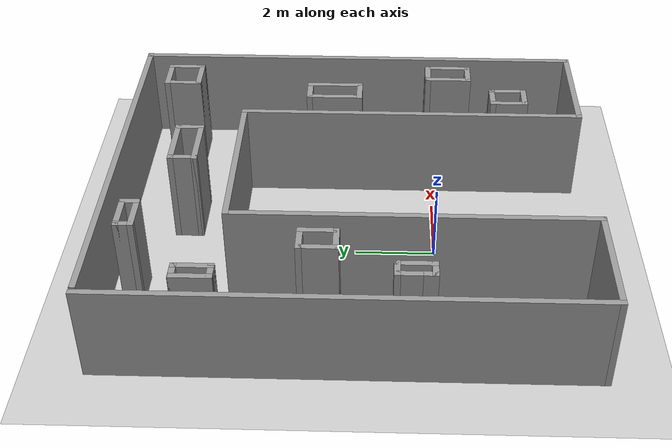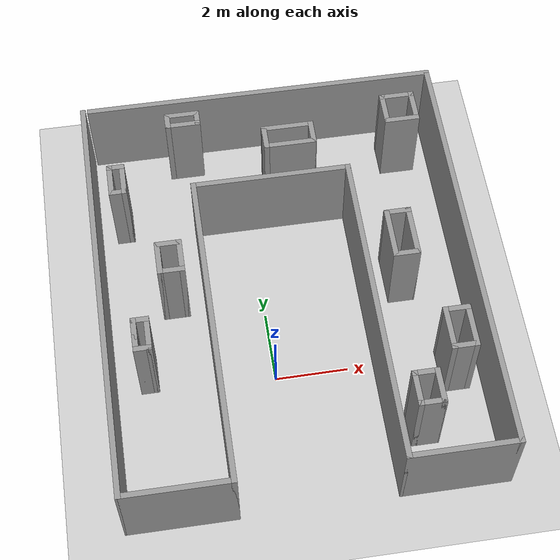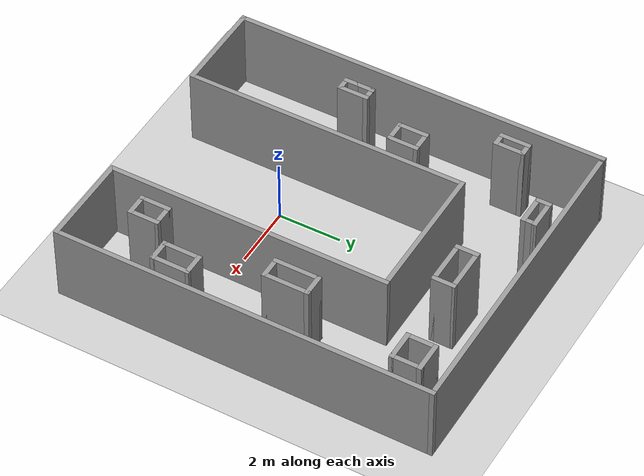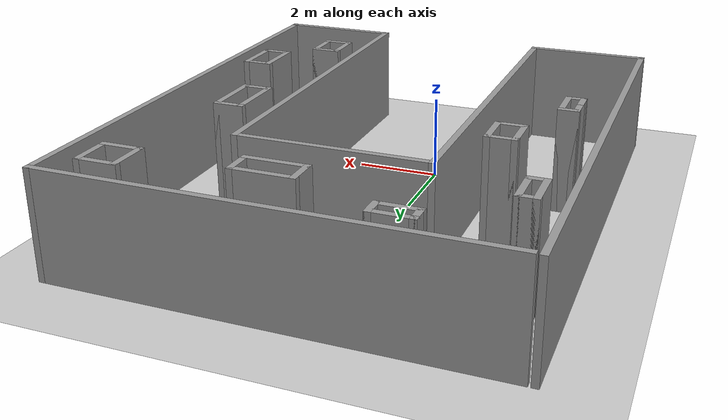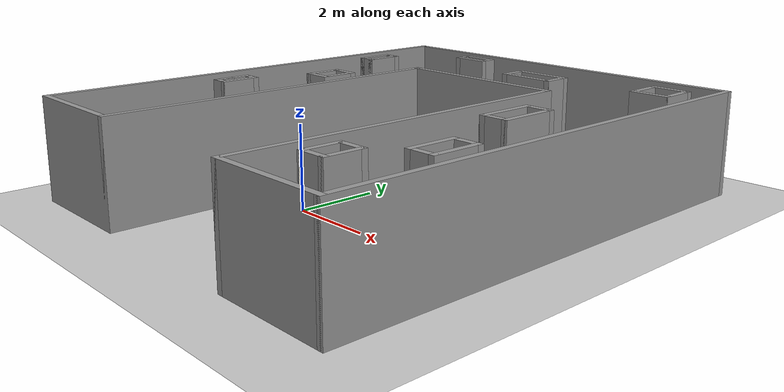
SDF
<sdf version="1.7">
 <world name="default">
  <light name="sun" type="directional">
   <pose>0 0 10 0 -0 0</pose>
   <diffuse>0.8 0.8 0.8 1</diffuse>
   <specular>0.2 0.2 0.2 1</specular>
   <attenuation>
    <range>1000</range>
    <constant>0.9</constant>
    <linear>0.01</linear>
    <quadratic>0.001</quadratic>
   </attenuation>
   <direction>-0.5 0.1 -0.9</direction>
   <spot><inner_angle>0</inner_angle><outer_angle>0</outer_angle><falloff>0</falloff></spot>
  </light>
  <model name="ground_plane">
   <static>1</static>
   <link name="link">
    <collision name="collision">
     <geometry><plane><normal>0 0 1</normal><size>100 100</size></plane></geometry>
     <surface>
      <contact><collide_bitmask>65535</collide_bitmask></contact>
      <friction><ode><mu>100</mu><mu2>50</mu2></ode></friction>
     </surface>
    </collision>
    <visual name="visual">
     <cast_shadows>0</cast_shadows>
     <geometry><plane><normal>0 0 1</normal><size>100 100</size></plane></geometry>
     <material>
      <script><uri>file://media/materials/scripts/gazebo.material</uri><name>Gazebo/Grey</name></script>
     </material>
    </visual>
   </link>
  </model>
  <gravity>0 0 -9.8</gravity>
  <magnetic_field>6e-06 2.3e-05 -4.2e-05</magnetic_field>
  <atmosphere type="adiabatic"/>
  <physics type="ode">
   <max_step_size>0.001</max_step_size>
   <real_time_factor>1</real_time_factor>
   <real_time_update_rate>1000</real_time_update_rate>
  </physics>
  <scene><ambient>0.4 0.4 0.4 1</ambient><background>0.7 0.7 0.7 1</background><shadows>1</shadows></scene>
  <spherical_coordinates>
   <surface_model>EARTH_WGS84</surface_model>
   <latitude_deg>0</latitude_deg>
   <longitude_deg>0</longitude_deg>
   <elevation>0</elevation>
   <heading_deg>0</heading_deg>
  </spherical_coordinates>
  <model name="test_1">
   <pose>0.615 2.115 0 0 -0 0</pose>
   <link name="Wall_0">
    <collision name="Wall_0_Collision">
     <geometry><box><size>12 0.15 2.5</size></box></geometry>
     <pose>0 0 1.25 0 -0 0</pose>
    </collision>
    <visual name="Wall_0_Visual">
     <pose>0 0 1.25 0 -0 0</pose>
     <geometry><box><size>12 0.15 2.5</size></box></geometry>
     <material>
      <script><uri>file://media/materials/scripts/gazebo.material</uri><name>Gazebo/Grey</name></script>
      <ambient>1 1 1 1</ambient>
     </material>
     <meta><layer>0</layer></meta>
    </visual>
    <pose>-5.025 0 0 0 -0 1.5708</pose>
   </link>
   <link name="Wall_10">
    <collision name="Wall_10_Collision">
     <geometry><box><size>0.5 0.15 2.5</size></box></geometry>
     <pose>0 0 1.25 0 -0 0</pose>
    </collision>
    <visual name="Wall_10_Visual">
     <pose>0 0 1.25 0 -0 0</pose>
     <geometry><box><size>0.5 0.15 2.5</size></box></geometry>
     <material>
      <script><uri>file://media/materials/scripts/gazebo.material</uri><name>Gazebo/Grey</name></script>
      <ambient>1 1 1 1</ambient>
     </material>
     <meta><layer>0</layer></meta>
    </visual>
    <pose>-4.22394 -1.78889 0 0 -0 -1.5708</pose>
   </link>
   <link name="Wall_11">
    <collision name="Wall_11_Collision">
     <geometry><box><size>0.5 0.15 2.5</size></box></geometry>
     <pose>0 0 1.25 0 -0 0</pose>
    </collision>
    <visual name="Wall_11_Visual">
     <pose>0 0 1.25 0 -0 0</pose>
     <geometry><box><size>0.5 0.15 2.5</size></box></geometry>
     <material>
      <script><uri>file://media/materials/scripts/gazebo.material</uri><name>Gazebo/Grey</name></script>
      <ambient>1 1 1 1</ambient>
     </material>
     <meta><layer>0</layer></meta>
    </visual>
    <pose>-4.04894 -1.96389 0 0 -0 0</pose>
   </link>
   <link name="Wall_12">
    <collision name="Wall_12_Collision">
     <geometry><box><size>1 0.15 2.5</size></box></geometry>
     <pose>0 0 1.25 0 -0 0</pose>
    </collision>
    <visual name="Wall_12_Visual">
     <pose>0 0 1.25 0 -0 0</pose>
     <geometry><box><size>1 0.15 2.5</size></box></geometry>
     <material>
      <script><uri>file://media/materials/scripts/gazebo.material</uri><name>Gazebo/Grey</name></script>
      <ambient>1 1 1 1</ambient>
     </material>
     <meta><layer>0</layer></meta>
    </visual>
    <pose>-3.87394 -1.53889 0 0 -0 1.5708</pose>
   </link>
   <link name="Wall_13">
    <collision name="Wall_13_Collision">
     <geometry><box><size>0.5 0.15 2.5</size></box></geometry>
     <pose>0 0 1.25 0 -0 0</pose>
    </collision>
    <visual name="Wall_13_Visual">
     <pose>0 0 1.25 0 -0 0</pose>
     <geometry><box><size>0.5 0.15 2.5</size></box></geometry>
     <material>
      <script><uri>file://media/materials/scripts/gazebo.material</uri><name>Gazebo/Grey</name></script>
      <ambient>1 1 1 1</ambient>
     </material>
     <meta><layer>0</layer></meta>
    </visual>
    <pose>-4.04894 -1.11389 0 0 -0 3.14159</pose>
   </link>
   <link name="Wall_14">
    <collision name="Wall_14_Collision">
     <geometry><box><size>0.65 0.15 2.5</size></box></geometry>
     <pose>0 0 1.25 0 -0 0</pose>
    </collision>
    <visual name="Wall_14_Visual">
     <pose>0 0 1.25 0 -0 0</pose>
     <geometry><box><size>0.65 0.15 2.5</size></box></geometry>
     <material>
      <script><uri>file://media/materials/scripts/gazebo.material</uri><name>Gazebo/Grey</name></script>
      <ambient>1 1 1 1</ambient>
     </material>
     <meta><layer>0</layer></meta>
    </visual>
    <pose>-4.22394 -1.36389 0 0 -0 -1.5708</pose>
   </link>
   <link name="Wall_16">
    <collision name="Wall_16_Collision">
     <geometry><box><size>1 0.15 2.5</size></box></geometry>
     <pose>0 0 1.25 0 -0 0</pose>
    </collision>
    <visual name="Wall_16_Visual">
     <pose>0 0 1.25 0 -0 0</pose>
     <geometry><box><size>1 0.15 2.5</size></box></geometry>
     <material>
      <script><uri>file://media/materials/scripts/gazebo.material</uri><name>Gazebo/Grey</name></script>
      <ambient>1 1 1 1</ambient>
     </material>
     <meta><layer>0</layer></meta>
    </visual>
    <pose>-3.37355 0.705141 0 0 -0 -1.5708</pose>
   </link>
   <link name="Wall_17">
    <collision name="Wall_17_Collision">
     <geometry><box><size>0.75 0.15 2.5</size></box></geometry>
     <pose>0 0 1.25 0 -0 0</pose>
    </collision>
    <visual name="Wall_17_Visual">
     <pose>0 0 1.25 0 -0 0</pose>
     <geometry><box><size>0.75 0.15 2.5</size></box></geometry>
     <material>
      <script><uri>file://media/materials/scripts/gazebo.material</uri><name>Gazebo/Grey</name></script>
      <ambient>1 1 1 1</ambient>
     </material>
     <meta><layer>0</layer></meta>
    </visual>
    <pose>-3.07355 0.280141 0 0 -0 0</pose>
   </link>
   <link name="Wall_18">
    <collision name="Wall_18_Collision">
     <geometry><box><size>1 0.15 2.5</size></box></geometry>
     <pose>0 0 1.25 0 -0 0</pose>
    </collision>
    <visual name="Wall_18_Visual">
     <pose>0 0 1.25 0 -0 0</pose>
     <geometry><box><size>1 0.15 2.5</size></box></geometry>
     <material>
      <script><uri>file://media/materials/scripts/gazebo.material</uri><name>Gazebo/Grey</name></script>
      <ambient>1 1 1 1</ambient>
     </material>
     <meta><layer>0</layer></meta>
    </visual>
    <pose>-2.77355 0.705141 0 0 -0 1.5708</pose>
   </link>
   <link name="Wall_19">
    <collision name="Wall_19_Collision">
     <geometry><box><size>0.75 0.15 2.5</size></box></geometry>
     <pose>0 0 1.25 0 -0 0</pose>
    </collision>
    <visual name="Wall_19_Visual">
     <pose>0 0 1.25 0 -0 0</pose>
     <geometry><box><size>0.75 0.15 2.5</size></box></geometry>
     <material>
      <script><uri>file://media/materials/scripts/gazebo.material</uri><name>Gazebo/Grey</name></script>
      <ambient>1 1 1 1</ambient>
     </material>
     <meta><layer>0</layer></meta>
    </visual>
    <pose>-3.07355 1.13014 0 0 -0 3.14159</pose>
   </link>
   <link name="Wall_2">
    <collision name="Wall_2_Collision">
     <geometry><box><size>3 0.15 2.5</size></box></geometry>
     <pose>0 0 1.25 0 -0 0</pose>
    </collision>
    <visual name="Wall_2_Visual">
     <pose>0 0 1.25 0 -0 0</pose>
     <geometry><box><size>3 0.15 2.5</size></box></geometry>
     <material>
      <script><uri>file://media/materials/scripts/gazebo.material</uri><name>Gazebo/Grey</name></script>
      <ambient>1 1 1 1</ambient>
     </material>
     <meta><layer>0</layer></meta>
    </visual>
    <pose>-3.6 -5.925 0 0 -0 0</pose>
   </link>
   <link name="Wall_21">
    <collision name="Wall_21_Collision">
     <geometry><box><size>1 0.15 2.5</size></box></geometry>
     <pose>0 0 1.25 0 -0 0</pose>
    </collision>
    <visual name="Wall_21_Visual">
     <pose>0 0 1.25 0 -0 0</pose>
     <geometry><box><size>1 0.15 2.5</size></box></geometry>
     <material>
      <script><uri>file://media/materials/scripts/gazebo.material</uri><name>Gazebo/Grey</name></script>
      <ambient>1 1 1 1</ambient>
     </material>
     <meta><layer>0</layer></meta>
    </visual>
    <pose>-4.44311 3.43164 0 0 -0 -1.5708</pose>
   </link>
   <link name="Wall_22">
    <collision name="Wall_22_Collision">
     <geometry><box><size>0.5 0.15 2.5</size></box></geometry>
     <pose>0 0 1.25 0 -0 0</pose>
    </collision>
    <visual name="Wall_22_Visual">
     <pose>0 0 1.25 0 -0 0</pose>
     <geometry><box><size>0.5 0.15 2.5</size></box></geometry>
     <material>
      <script><uri>file://media/materials/scripts/gazebo.material</uri><name>Gazebo/Grey</name></script>
      <ambient>1 1 1 1</ambient>
     </material>
     <meta><layer>0</layer></meta>
    </visual>
    <pose>-4.26811 3.00664 0 0 -0 0</pose>
   </link>
   <link name="Wall_23">
    <collision name="Wall_23_Collision">
     <geometry><box><size>1 0.15 2.5</size></box></geometry>
     <pose>0 0 1.25 0 -0 0</pose>
    </collision>
    <visual name="Wall_23_Visual">
     <pose>0 0 1.25 0 -0 0</pose>
     <geometry><box><size>1 0.15 2.5</size></box></geometry>
     <material>
      <script><uri>file://media/materials/scripts/gazebo.material</uri><name>Gazebo/Grey</name></script>
      <ambient>1 1 1 1</ambient>
     </material>
     <meta><layer>0</layer></meta>
    </visual>
    <pose>-4.09311 3.43164 0 0 -0 1.5708</pose>
   </link>
   <link name="Wall_24">
    <collision name="Wall_24_Collision">
     <geometry><box><size>0.5 0.15 2.5</size></box></geometry>
     <pose>0 0 1.25 0 -0 0</pose>
    </collision>
    <visual name="Wall_24_Visual">
     <pose>0 0 1.25 0 -0 0</pose>
     <geometry><box><size>0.5 0.15 2.5</size></box></geometry>
     <material>
      <script><uri>file://media/materials/scripts/gazebo.material</uri><name>Gazebo/Grey</name></script>
      <ambient>1 1 1 1</ambient>
     </material>
     <meta><layer>0</layer></meta>
    </visual>
    <pose>-4.26811 3.85664 0 0 -0 3.14159</pose>
   </link>
   <link name="Wall_26">
    <collision name="Wall_26_Collision">
     <geometry><box><size>1 0.15 2.5</size></box></geometry>
     <pose>0 0 1.25 0 -0 0</pose>
    </collision>
    <visual name="Wall_26_Visual">
     <pose>0 0 1.25 0 -0 0</pose>
     <geometry><box><size>1 0.15 2.5</size></box></geometry>
     <material>
      <script><uri>file://media/materials/scripts/gazebo.material</uri><name>Gazebo/Grey</name></script>
      <ambient>1 1 1 1</ambient>
     </material>
     <meta><layer>0</layer></meta>
    </visual>
    <pose>-2.23843 5.42591 0 0 -0 0</pose>
   </link>
   <link name="Wall_27">
    <collision name="Wall_27_Collision">
     <geometry><box><size>0.5 0.15 2.5</size></box></geometry>
     <pose>0 0 1.25 0 -0 0</pose>
    </collision>
    <visual name="Wall_27_Visual">
     <pose>0 0 1.25 0 -0 0</pose>
     <geometry><box><size>0.5 0.15 2.5</size></box></geometry>
     <material>
      <script><uri>file://media/materials/scripts/gazebo.material</uri><name>Gazebo/Grey</name></script>
      <ambient>1 1 1 1</ambient>
     </material>
     <meta><layer>0</layer></meta>
    </visual>
    <pose>-1.81343 5.25091 0 0 -0 -1.5708</pose>
   </link>
   <link name="Wall_28">
    <collision name="Wall_28_Collision">
     <geometry><box><size>1 0.15 2.5</size></box></geometry>
     <pose>0 0 1.25 0 -0 0</pose>
    </collision>
    <visual name="Wall_28_Visual">
     <pose>0 0 1.25 0 -0 0</pose>
     <geometry><box><size>1 0.15 2.5</size></box></geometry>
     <material>
      <script><uri>file://media/materials/scripts/gazebo.material</uri><name>Gazebo/Grey</name></script>
      <ambient>1 1 1 1</ambient>
     </material>
     <meta><layer>0</layer></meta>
    </visual>
    <pose>-2.23843 5.07591 0 0 -0 3.14159</pose>
   </link>
   <link name="Wall_29">
    <collision name="Wall_29_Collision">
     <geometry><box><size>0.5 0.15 2.5</size></box></geometry>
     <pose>0 0 1.25 0 -0 0</pose>
    </collision>
    <visual name="Wall_29_Visual">
     <pose>0 0 1.25 0 -0 0</pose>
     <geometry><box><size>0.5 0.15 2.5</size></box></geometry>
     <material>
      <script><uri>file://media/materials/scripts/gazebo.material</uri><name>Gazebo/Grey</name></script>
      <ambient>1 1 1 1</ambient>
     </material>
     <meta><layer>0</layer></meta>
    </visual>
    <pose>-2.66343 5.25091 0 0 -0 1.5708</pose>
   </link>
   <link name="Wall_3">
    <collision name="Wall_3_Collision">
     <geometry><box><size>9 0.15 2.5</size></box></geometry>
     <pose>0 0 1.25 0 -0 0</pose>
    </collision>
    <visual name="Wall_3_Visual">
     <pose>0 0 1.25 0 -0 0</pose>
     <geometry><box><size>9 0.15 2.5</size></box></geometry>
     <material>
      <script><uri>file://media/materials/scripts/gazebo.material</uri><name>Gazebo/Grey</name></script>
      <ambient>1 1 1 1</ambient>
     </material>
     <meta><layer>0</layer></meta>
    </visual>
    <pose>-2.175 -1.5 0 0 -0 1.5708</pose>
   </link>
   <link name="Wall_31">
    <collision name="Wall_31_Collision">
     <geometry><box><size>0.75 0.15 2.5</size></box></geometry>
     <pose>0 0 1.25 0 -0 0</pose>
    </collision>
    <visual name="Wall_31_Visual">
     <pose>0 0 1.25 0 -0 0</pose>
     <geometry><box><size>0.75 0.15 2.5</size></box></geometry>
     <material>
      <script><uri>file://media/materials/scripts/gazebo.material</uri><name>Gazebo/Grey</name></script>
      <ambient>1 1 1 1</ambient>
     </material>
     <meta><layer>0</layer></meta>
    </visual>
    <pose>0.028 4.27553 0 0 -0 -1.5708</pose>
   </link>
   <link name="Wall_32">
    <collision name="Wall_32_Collision">
     <geometry><box><size>1.5 0.15 2.5</size></box></geometry>
     <pose>0 0 1.25 0 -0 0</pose>
    </collision>
    <visual name="Wall_32_Visual">
     <pose>0 0 1.25 0 -0 0</pose>
     <geometry><box><size>1.5 0.15 2.5</size></box></geometry>
     <material>
      <script><uri>file://media/materials/scripts/gazebo.material</uri><name>Gazebo/Grey</name></script>
      <ambient>1 1 1 1</ambient>
     </material>
     <meta><layer>0</layer></meta>
    </visual>
    <pose>0.703 3.97553 0 0 -0 0</pose>
   </link>
   <link name="Wall_33">
    <collision name="Wall_33_Collision">
     <geometry><box><size>0.75 0.15 2.5</size></box></geometry>
     <pose>0 0 1.25 0 -0 0</pose>
    </collision>
    <visual name="Wall_33_Visual">
     <pose>0 0 1.25 0 -0 0</pose>
     <geometry><box><size>0.75 0.15 2.5</size></box></geometry>
     <material>
      <script><uri>file://media/materials/scripts/gazebo.material</uri><name>Gazebo/Grey</name></script>
      <ambient>1 1 1 1</ambient>
     </material>
     <meta><layer>0</layer></meta>
    </visual>
    <pose>1.378 4.27553 0 0 -0 1.5708</pose>
   </link>
   <link name="Wall_34">
    <collision name="Wall_34_Collision">
     <geometry><box><size>1.5 0.15 2.5</size></box></geometry>
     <pose>0 0 1.25 0 -0 0</pose>
    </collision>
    <visual name="Wall_34_Visual">
     <pose>0 0 1.25 0 -0 0</pose>
     <geometry><box><size>1.5 0.15 2.5</size></box></geometry>
     <material>
      <script><uri>file://media/materials/scripts/gazebo.material</uri><name>Gazebo/Grey</name></script>
      <ambient>1 1 1 1</ambient>
     </material>
     <meta><layer>0</layer></meta>
    </visual>
    <pose>0.703 4.57553 0 0 -0 3.14159</pose>
   </link>
   <link name="Wall_4">
    <collision name="Wall_4_Collision">
     <geometry><box><size>4.5 0.15 2.5</size></box></geometry>
     <pose>0 0 1.25 0 -0 0</pose>
    </collision>
    <visual name="Wall_4_Visual">
     <pose>0 0 1.25 0 -0 0</pose>
     <geometry><box><size>4.5 0.15 2.5</size></box></geometry>
     <material>
      <script><uri>file://media/materials/scripts/gazebo.material</uri><name>Gazebo/Grey</name></script>
      <ambient>1 1 1 1</ambient>
     </material>
     <meta><layer>0</layer></meta>
    </visual>
    <pose>0 2.925 0 0 -0 0</pose>
   </link>
   <link name="Wall_41">
    <collision name="Wall_41_Collision">
     <geometry><box><size>1 0.15 2.5</size></box></geometry>
     <pose>0 0 1.25 0 -0 0</pose>
    </collision>
    <visual name="Wall_41_Visual">
     <pose>0 0 1.25 0 -0 0</pose>
     <geometry><box><size>1 0.15 2.5</size></box></geometry>
     <material>
      <script><uri>file://media/materials/scripts/gazebo.material</uri><name>Gazebo/Grey</name></script>
      <ambient>1 1 1 1</ambient>
     </material>
     <meta><layer>0</layer></meta>
    </visual>
    <pose>3.56982 4.78174 0 0 -0 -1.5708</pose>
   </link>
   <link name="Wall_42">
    <collision name="Wall_42_Collision">
     <geometry><box><size>1 0.15 2.5</size></box></geometry>
     <pose>0 0 1.25 0 -0 0</pose>
    </collision>
    <visual name="Wall_42_Visual">
     <pose>0 0 1.25 0 -0 0</pose>
     <geometry><box><size>1 0.15 2.5</size></box></geometry>
     <material>
      <script><uri>file://media/materials/scripts/gazebo.material</uri><name>Gazebo/Grey</name></script>
      <ambient>1 1 1 1</ambient>
     </material>
     <meta><layer>0</layer></meta>
    </visual>
    <pose>3.99482 4.35674 0 0 -0 0</pose>
   </link>
   <link name="Wall_43">
    <collision name="Wall_43_Collision">
     <geometry><box><size>1 0.15 2.5</size></box></geometry>
     <pose>0 0 1.25 0 -0 0</pose>
    </collision>
    <visual name="Wall_43_Visual">
     <pose>0 0 1.25 0 -0 0</pose>
     <geometry><box><size>1 0.15 2.5</size></box></geometry>
     <material>
      <script><uri>file://media/materials/scripts/gazebo.material</uri><name>Gazebo/Grey</name></script>
      <ambient>1 1 1 1</ambient>
     </material>
     <meta><layer>0</layer></meta>
    </visual>
    <pose>4.41982 4.78174 0 0 -0 1.5708</pose>
   </link>
   <link name="Wall_44">
    <collision name="Wall_44_Collision">
     <geometry><box><size>1 0.15 2.5</size></box></geometry>
     <pose>0 0 1.25 0 -0 0</pose>
    </collision>
    <visual name="Wall_44_Visual">
     <pose>0 0 1.25 0 -0 0</pose>
     <geometry><box><size>1 0.15 2.5</size></box></geometry>
     <material>
      <script><uri>file://media/materials/scripts/gazebo.material</uri><name>Gazebo/Grey</name></script>
      <ambient>1 1 1 1</ambient>
     </material>
     <meta><layer>0</layer></meta>
    </visual>
    <pose>3.99482 5.20674 0 0 -0 3.14159</pose>
   </link>
   <link name="Wall_46">
    <collision name="Wall_46_Collision">
     <geometry><box><size>1.5 0.15 2.5</size></box></geometry>
     <pose>0 0 1.25 0 -0 0</pose>
    </collision>
    <visual name="Wall_46_Visual">
     <pose>0 0 1.25 0 -0 0</pose>
     <geometry><box><size>1.5 0.15 2.5</size></box></geometry>
     <material>
      <script><uri>file://media/materials/scripts/gazebo.material</uri><name>Gazebo/Grey</name></script>
      <ambient>1 1 1 1</ambient>
     </material>
     <meta><layer>0</layer></meta>
    </visual>
    <pose>2.96491 0.56911 0 0 -0 -1.5708</pose>
   </link>
   <link name="Wall_47">
    <collision name="Wall_47_Collision">
     <geometry><box><size>0.75 0.15 2.5</size></box></geometry>
     <pose>0 0 1.25 0 -0 0</pose>
    </collision>
    <visual name="Wall_47_Visual">
     <pose>0 0 1.25 0 -0 0</pose>
     <geometry><box><size>0.75 0.15 2.5</size></box></geometry>
     <material>
      <script><uri>file://media/materials/scripts/gazebo.material</uri><name>Gazebo/Grey</name></script>
      <ambient>1 1 1 1</ambient>
     </material>
     <meta><layer>0</layer></meta>
    </visual>
    <pose>3.26491 -0.10589 0 0 -0 0</pose>
   </link>
   <link name="Wall_48">
    <collision name="Wall_48_Collision">
     <geometry><box><size>1.5 0.15 2.5</size></box></geometry>
     <pose>0 0 1.25 0 -0 0</pose>
    </collision>
    <visual name="Wall_48_Visual">
     <pose>0 0 1.25 0 -0 0</pose>
     <geometry><box><size>1.5 0.15 2.5</size></box></geometry>
     <material>
      <script><uri>file://media/materials/scripts/gazebo.material</uri><name>Gazebo/Grey</name></script>
      <ambient>1 1 1 1</ambient>
     </material>
     <meta><layer>0</layer></meta>
    </visual>
    <pose>3.56491 0.56911 0 0 -0 1.5708</pose>
   </link>
   <link name="Wall_49">
    <collision name="Wall_49_Collision">
     <geometry><box><size>0.75 0.15 2.5</size></box></geometry>
     <pose>0 0 1.25 0 -0 0</pose>
    </collision>
    <visual name="Wall_49_Visual">
     <pose>0 0 1.25 0 -0 0</pose>
     <geometry><box><size>0.75 0.15 2.5</size></box></geometry>
     <material>
      <script><uri>file://media/materials/scripts/gazebo.material</uri><name>Gazebo/Grey</name></script>
      <ambient>1 1 1 1</ambient>
     </material>
     <meta><layer>0</layer></meta>
    </visual>
    <pose>3.26491 1.24411 0 0 -0 3.14159</pose>
   </link>
   <link name="Wall_5">
    <collision name="Wall_5_Collision">
     <geometry><box><size>9 0.15 2.5</size></box></geometry>
     <pose>0 0 1.25 0 -0 0</pose>
    </collision>
    <visual name="Wall_5_Visual">
     <pose>0 0 1.25 0 -0 0</pose>
     <geometry><box><size>9 0.15 2.5</size></box></geometry>
     <material>
      <script><uri>file://media/materials/scripts/gazebo.material</uri><name>Gazebo/Grey</name></script>
      <ambient>1 1 1 1</ambient>
     </material>
     <meta><layer>0</layer></meta>
    </visual>
    <pose>2.175 -1.5 0 0 -0 -1.5708</pose>
   </link>
   <link name="Wall_51">
    <collision name="Wall_51_Collision">
     <geometry><box><size>1.25 0.15 2.5</size></box></geometry>
     <pose>0 0 1.25 0 -0 0</pose>
    </collision>
    <visual name="Wall_51_Visual">
     <pose>0 0 1.25 0 -0 0</pose>
     <geometry><box><size>1.25 0.15 2.5</size></box></geometry>
     <material>
      <script><uri>file://media/materials/scripts/gazebo.material</uri><name>Gazebo/Grey</name></script>
      <ambient>1 1 1 1</ambient>
     </material>
     <meta><layer>0</layer></meta>
    </visual>
    <pose>3.92535 -2.54269 0 0 -0 -1.5708</pose>
   </link>
   <link name="Wall_52">
    <collision name="Wall_52_Collision">
     <geometry><box><size>0.75 0.15 2.5</size></box></geometry>
     <pose>0 0 1.25 0 -0 0</pose>
    </collision>
    <visual name="Wall_52_Visual">
     <pose>0 0 1.25 0 -0 0</pose>
     <geometry><box><size>0.75 0.15 2.5</size></box></geometry>
     <material>
      <script><uri>file://media/materials/scripts/gazebo.material</uri><name>Gazebo/Grey</name></script>
      <ambient>1 1 1 1</ambient>
     </material>
     <meta><layer>0</layer></meta>
    </visual>
    <pose>4.22535 -3.09268 0 0 -0 0</pose>
   </link>
   <link name="Wall_53">
    <collision name="Wall_53_Collision">
     <geometry><box><size>1.25 0.15 2.5</size></box></geometry>
     <pose>0 0 1.25 0 -0 0</pose>
    </collision>
    <visual name="Wall_53_Visual">
     <pose>0 0 1.25 0 -0 0</pose>
     <geometry><box><size>1.25 0.15 2.5</size></box></geometry>
     <material>
      <script><uri>file://media/materials/scripts/gazebo.material</uri><name>Gazebo/Grey</name></script>
      <ambient>1 1 1 1</ambient>
     </material>
     <meta><layer>0</layer></meta>
    </visual>
    <pose>4.52535 -2.54269 0 0 -0 1.5708</pose>
   </link>
   <link name="Wall_54">
    <collision name="Wall_54_Collision">
     <geometry><box><size>0.75 0.15 2.5</size></box></geometry>
     <pose>0 0 1.25 0 -0 0</pose>
    </collision>
    <visual name="Wall_54_Visual">
     <pose>0 0 1.25 0 -0 0</pose>
     <geometry><box><size>0.75 0.15 2.5</size></box></geometry>
     <material>
      <script><uri>file://media/materials/scripts/gazebo.material</uri><name>Gazebo/Grey</name></script>
      <ambient>1 1 1 1</ambient>
     </material>
     <meta><layer>0</layer></meta>
    </visual>
    <pose>4.22535 -1.99269 0 0 -0 3.14159</pose>
   </link>
   <link name="Wall_56">
    <collision name="Wall_56_Collision">
     <geometry><box><size>1 0.15 2.5</size></box></geometry>
     <pose>0 0 1.25 0 -0 0</pose>
    </collision>
    <visual name="Wall_56_Visual">
     <pose>0 0 1.25 0 -0 0</pose>
     <geometry><box><size>1 0.15 2.5</size></box></geometry>
     <material>
      <script><uri>file://media/materials/scripts/gazebo.material</uri><name>Gazebo/Grey</name></script>
      <ambient>1 1 1 1</ambient>
     </material>
     <meta><layer>0</layer></meta>
    </visual>
    <pose>2.75433 -4.13363 0 0 -0 -1.5708</pose>
   </link>
   <link name="Wall_57">
    <collision name="Wall_57_Collision">
     <geometry><box><size>0.75 0.15 2.5</size></box></geometry>
     <pose>0 0 1.25 0 -0 0</pose>
    </collision>
    <visual name="Wall_57_Visual">
     <pose>0 0 1.25 0 -0 0</pose>
     <geometry><box><size>0.75 0.15 2.5</size></box></geometry>
     <material>
      <script><uri>file://media/materials/scripts/gazebo.material</uri><name>Gazebo/Grey</name></script>
      <ambient>1 1 1 1</ambient>
     </material>
     <meta><layer>0</layer></meta>
    </visual>
    <pose>3.05433 -4.55863 0 0 -0 0</pose>
   </link>
   <link name="Wall_58">
    <collision name="Wall_58_Collision">
     <geometry><box><size>1 0.15 2.5</size></box></geometry>
     <pose>0 0 1.25 0 -0 0</pose>
    </collision>
    <visual name="Wall_58_Visual">
     <pose>0 0 1.25 0 -0 0</pose>
     <geometry><box><size>1 0.15 2.5</size></box></geometry>
     <material>
      <script><uri>file://media/materials/scripts/gazebo.material</uri><name>Gazebo/Grey</name></script>
      <ambient>1 1 1 1</ambient>
     </material>
     <meta><layer>0</layer></meta>
    </visual>
    <pose>3.35433 -4.13363 0 0 -0 1.5708</pose>
   </link>
   <link name="Wall_59">
    <collision name="Wall_59_Collision">
     <geometry><box><size>0.75 0.15 2.5</size></box></geometry>
     <pose>0 0 1.25 0 -0 0</pose>
    </collision>
    <visual name="Wall_59_Visual">
     <pose>0 0 1.25 0 -0 0</pose>
     <geometry><box><size>0.75 0.15 2.5</size></box></geometry>
     <material>
      <script><uri>file://media/materials/scripts/gazebo.material</uri><name>Gazebo/Grey</name></script>
      <ambient>1 1 1 1</ambient>
     </material>
     <meta><layer>0</layer></meta>
    </visual>
    <pose>3.05433 -3.70863 0 0 -0 3.14159</pose>
   </link>
   <link name="Wall_6">
    <collision name="Wall_6_Collision">
     <geometry><box><size>3 0.15 2.5</size></box></geometry>
     <pose>0 0 1.25 0 -0 0</pose>
    </collision>
    <visual name="Wall_6_Visual">
     <pose>0 0 1.25 0 -0 0</pose>
     <geometry><box><size>3 0.15 2.5</size></box></geometry>
     <material>
      <script><uri>file://media/materials/scripts/gazebo.material</uri><name>Gazebo/Grey</name></script>
      <ambient>1 1 1 1</ambient>
     </material>
     <meta><layer>0</layer></meta>
    </visual>
    <pose>3.6 -5.925 0 0 -0 0</pose>
   </link>
   <link name="Wall_7">
    <collision name="Wall_7_Collision">
     <geometry><box><size>12 0.15 2.5</size></box></geometry>
     <pose>0 0 1.25 0 -0 0</pose>
    </collision>
    <visual name="Wall_7_Visual">
     <pose>0 0 1.25 0 -0 0</pose>
     <geometry><box><size>12 0.15 2.5</size></box></geometry>
     <material>
      <script><uri>file://media/materials/scripts/gazebo.material</uri><name>Gazebo/Grey</name></script>
      <ambient>1 1 1 1</ambient>
     </material>
     <meta><layer>0</layer></meta>
    </visual>
    <pose>5.025 0 0 0 -0 1.5708</pose>
   </link>
   <link name="Wall_8">
    <collision name="Wall_8_Collision">
     <geometry><box><size>10 0.15 2.5</size></box></geometry>
     <pose>0 0 1.25 0 -0 0</pose>
    </collision>
    <visual name="Wall_8_Visual">
     <pose>0 0 1.25 0 -0 0</pose>
     <geometry><box><size>10 0.15 2.5</size></box></geometry>
     <material>
      <script><uri>file://media/materials/scripts/gazebo.material</uri><name>Gazebo/Grey</name></script>
      <ambient>1 1 1 1</ambient>
     </material>
     <meta><layer>0</layer></meta>
    </visual>
    <pose>0.1 5.925 0 0 -0 3.14159</pose>
   </link>
   <static>1</static>
  </model>
 </world>
</sdf>
